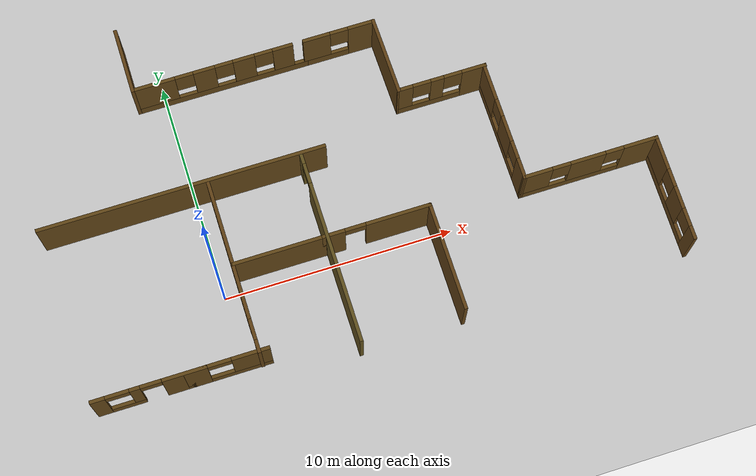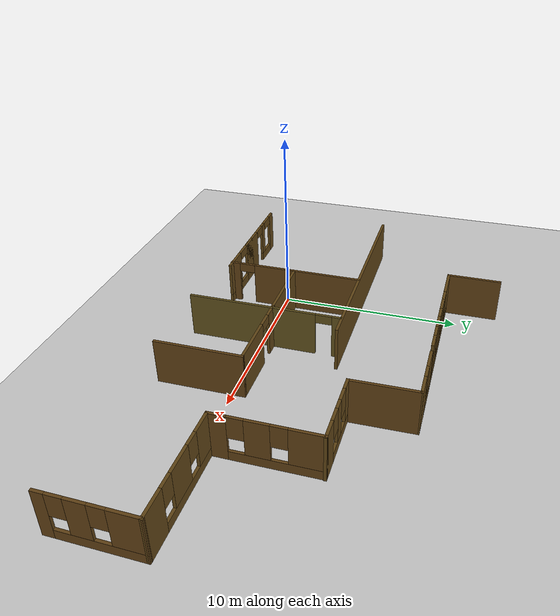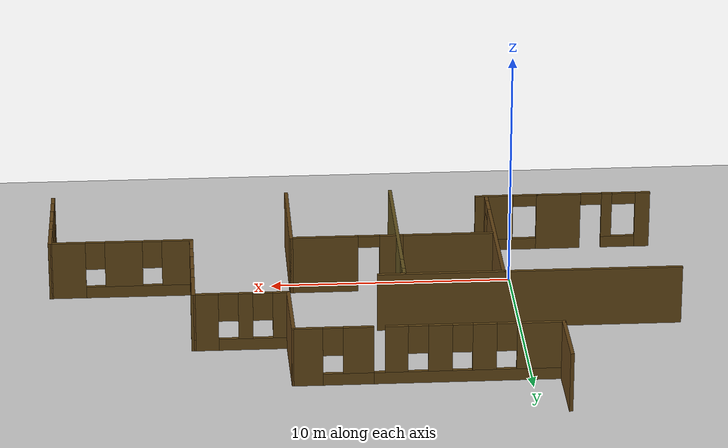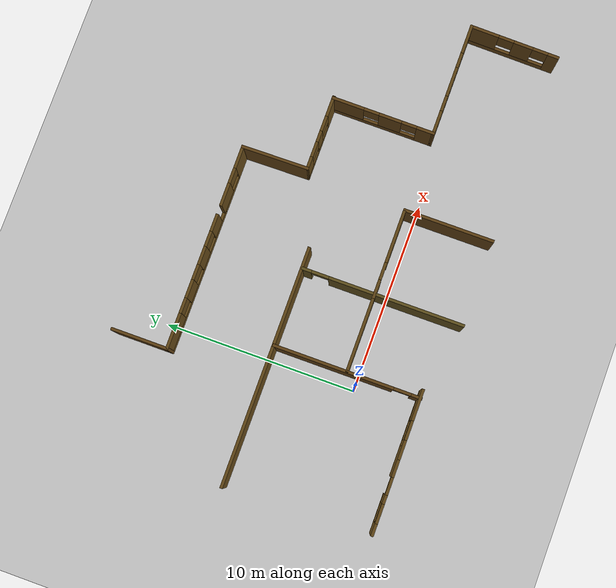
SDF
<sdf version="1.6">
 <world name="default">
  <model name="ground_plane">
   <static>1</static>
   <link name="link">
    <collision name="collision">
     <geometry><plane><normal>0 0 1</normal><size>100 100</size></plane></geometry>
     <surface>
      <contact><collide_bitmask>65535</collide_bitmask></contact>
      <friction><ode><mu>100</mu><mu2>50</mu2></ode></friction>
     </surface>
    </collision>
    <visual name="visual">
     <cast_shadows>0</cast_shadows>
     <geometry><plane><normal>0 0 1</normal><size>100 100</size></plane></geometry>
     <material>
      <script><uri>file://media/materials/scripts/gazebo.material</uri><name>Gazebo/Grey</name></script>
     </material>
    </visual>
   </link>
  </model>
  <model name="BuildMyWorld">
   <pose>-3.99019 0.7838 0 0 -0 0</pose>
   <link name="Wall_54">
    <pose>1.40983 -3.94563 0 0 -0 0</pose>
    <visual name="Wall_54_Visual_0">
     <pose>-3.4333 0 1.25 0 -0 0</pose>
     <geometry><box><size>0.63341 0.15 2.5</size></box></geometry>
     <material>
      <script><uri>file://media/materials/scripts/gazebo.material</uri><name>Gazebo/Grey</name></script>
      <ambient>0.384314 0.27451 0.0862745 1</ambient>
     </material>
     <meta><layer>0</layer></meta>
    </visual>
    <collision name="Wall_54_Collision_0">
     <geometry><box><size>0.63341 0.15 2.5</size></box></geometry>
     <pose>-3.4333 0 1.25 0 -0 0</pose>
    </collision>
    <visual name="Wall_54_Visual_1">
     <pose>0.17724 0 1.25 0 -0 0</pose>
     <geometry><box><size>1.89286 0.15 2.5</size></box></geometry>
     <material>
      <script><uri>file://media/materials/scripts/gazebo.material</uri><name>Gazebo/Grey</name></script>
      <ambient>0.384314 0.27451 0.0862745 1</ambient>
     </material>
     <meta><layer>0</layer></meta>
    </visual>
    <collision name="Wall_54_Collision_1">
     <geometry><box><size>1.89286 0.15 2.5</size></box></geometry>
     <pose>0.17724 0 1.25 0 -0 0</pose>
    </collision>
    <visual name="Wall_54_Visual_2">
     <pose>0.625547 0 1.25 0 -0 0</pose>
     <geometry><box><size>0.99625 0.15 2.5</size></box></geometry>
     <material>
      <script><uri>file://media/materials/scripts/gazebo.material</uri><name>Gazebo/Grey</name></script>
      <ambient>0.384314 0.27451 0.0862745 1</ambient>
     </material>
     <meta><layer>0</layer></meta>
    </visual>
    <collision name="Wall_54_Collision_2">
     <geometry><box><size>0.99625 0.15 2.5</size></box></geometry>
     <pose>0.625547 0 1.25 0 -0 0</pose>
    </collision>
    <visual name="Wall_54_Visual_3">
     <pose>-2.39289 0 0.25 0 -0 0</pose>
     <geometry><box><size>1.4474 0.15 0.5</size></box></geometry>
     <material>
      <script><uri>file://media/materials/scripts/gazebo.material</uri><name>Gazebo/Grey</name></script>
      <ambient>0.384314 0.27451 0.0862745 1</ambient>
     </material>
     <meta><layer>0</layer></meta>
    </visual>
    <collision name="Wall_54_Collision_3">
     <geometry><box><size>1.4474 0.15 0.5</size></box></geometry>
     <pose>-2.39289 0 0.25 0 -0 0</pose>
    </collision>
    <visual name="Wall_54_Visual_4">
     <pose>2.43684 0 0.25 0 -0 0</pose>
     <geometry><box><size>2.62633 0.15 0.5</size></box></geometry>
     <material>
      <script><uri>file://media/materials/scripts/gazebo.material</uri><name>Gazebo/Grey</name></script>
      <ambient>0.384314 0.27451 0.0862745 1</ambient>
     </material>
     <meta><layer>0</layer></meta>
    </visual>
    <collision name="Wall_54_Collision_4">
     <geometry><box><size>2.62633 0.15 0.5</size></box></geometry>
     <pose>2.43684 0 0.25 0 -0 0</pose>
    </collision>
    <visual name="Wall_54_Visual_5">
     <pose>2.43684 0 0.25 0 -0 0</pose>
     <geometry><box><size>2.62633 0.15 0.5</size></box></geometry>
     <material>
      <script><uri>file://media/materials/scripts/gazebo.material</uri><name>Gazebo/Grey</name></script>
      <ambient>0.384314 0.27451 0.0862745 1</ambient>
     </material>
     <meta><layer>0</layer></meta>
    </visual>
    <collision name="Wall_54_Collision_5">
     <geometry><box><size>2.62633 0.15 0.5</size></box></geometry>
     <pose>2.43684 0 0.25 0 -0 0</pose>
    </collision>
    <visual name="Wall_54_Visual_6">
     <pose>-1.89289 0 1.5 0 -0 0</pose>
     <geometry><box><size>0.447398 0.15 2</size></box></geometry>
     <material>
      <script><uri>file://media/materials/scripts/gazebo.material</uri><name>Gazebo/Grey</name></script>
      <ambient>0.384314 0.27451 0.0862745 1</ambient>
     </material>
     <meta><layer>0</layer></meta>
    </visual>
    <collision name="Wall_54_Collision_6">
     <geometry><box><size>0.447398 0.15 2</size></box></geometry>
     <pose>-1.89289 0 1.5 0 -0 0</pose>
    </collision>
    <visual name="Wall_54_Visual_7">
     <pose>-1.89289 0 1.5 0 -0 0</pose>
     <geometry><box><size>0.447398 0.15 2</size></box></geometry>
     <material>
      <script><uri>file://media/materials/scripts/gazebo.material</uri><name>Gazebo/Grey</name></script>
      <ambient>0.384314 0.27451 0.0862745 1</ambient>
     </material>
     <meta><layer>0</layer></meta>
    </visual>
    <collision name="Wall_54_Collision_7">
     <geometry><box><size>0.447398 0.15 2</size></box></geometry>
     <pose>-1.89289 0 1.5 0 -0 0</pose>
    </collision>
    <visual name="Wall_54_Visual_8">
     <pose>2.93684 0 1.5 0 -0 0</pose>
     <geometry><box><size>1.62633 0.15 2</size></box></geometry>
     <material>
      <script><uri>file://media/materials/scripts/gazebo.material</uri><name>Gazebo/Grey</name></script>
      <ambient>0.384314 0.27451 0.0862745 1</ambient>
     </material>
     <meta><layer>0</layer></meta>
    </visual>
    <collision name="Wall_54_Collision_8">
     <geometry><box><size>1.62633 0.15 2</size></box></geometry>
     <pose>2.93684 0 1.5 0 -0 0</pose>
    </collision>
    <visual name="Wall_54_Visual_9">
     <pose>2.93684 0 1.5 0 -0 0</pose>
     <geometry><box><size>1.62633 0.15 2</size></box></geometry>
     <material>
      <script><uri>file://media/materials/scripts/gazebo.material</uri><name>Gazebo/Grey</name></script>
      <ambient>0.384314 0.27451 0.0862745 1</ambient>
     </material>
     <meta><layer>0</layer></meta>
    </visual>
    <collision name="Wall_54_Collision_9">
     <geometry><box><size>1.62633 0.15 2</size></box></geometry>
     <pose>2.93684 0 1.5 0 -0 0</pose>
    </collision>
    <visual name="Wall_54_Visual_10">
     <pose>-2.61659 0 2.25 0 -0 0</pose>
     <geometry><box><size>1 0.15 0.5</size></box></geometry>
     <material>
      <script><uri>file://media/materials/scripts/gazebo.material</uri><name>Gazebo/Grey</name></script>
      <ambient>0.384314 0.27451 0.0862745 1</ambient>
     </material>
     <meta><layer>0</layer></meta>
    </visual>
    <collision name="Wall_54_Collision_10">
     <geometry><box><size>1 0.15 0.5</size></box></geometry>
     <pose>-2.61659 0 2.25 0 -0 0</pose>
    </collision>
    <visual name="Wall_54_Visual_11">
     <pose>1.62367 0 2.25 0 -0 0</pose>
     <geometry><box><size>1 0.15 0.5</size></box></geometry>
     <material>
      <script><uri>file://media/materials/scripts/gazebo.material</uri><name>Gazebo/Grey</name></script>
      <ambient>0.384314 0.27451 0.0862745 1</ambient>
     </material>
     <meta><layer>0</layer></meta>
    </visual>
    <collision name="Wall_54_Collision_11">
     <geometry><box><size>1 0.15 0.5</size></box></geometry>
     <pose>1.62367 0 2.25 0 -0 0</pose>
    </collision>
    <visual name="Wall_54_Visual_12">
     <pose>1.62367 0 2.25 0 -0 0</pose>
     <geometry><box><size>1 0.15 0.5</size></box></geometry>
     <material>
      <script><uri>file://media/materials/scripts/gazebo.material</uri><name>Gazebo/Grey</name></script>
      <ambient>0.384314 0.27451 0.0862745 1</ambient>
     </material>
     <meta><layer>0</layer></meta>
    </visual>
    <collision name="Wall_54_Collision_12">
     <geometry><box><size>1 0.15 0.5</size></box></geometry>
     <pose>1.62367 0 2.25 0 -0 0</pose>
    </collision>
    <visual name="Wall_54_Visual_13">
     <pose>-1.22088 0 2.25 0 -0 0</pose>
     <geometry><box><size>0.896613 0.15 0.5</size></box></geometry>
     <material>
      <script><uri>file://media/materials/scripts/gazebo.material</uri><name>Gazebo/Grey</name></script>
      <ambient>0.384314 0.27451 0.0862745 1</ambient>
     </material>
     <meta><layer>0</layer></meta>
    </visual>
    <collision name="Wall_54_Collision_13">
     <geometry><box><size>0.896613 0.15 0.5</size></box></geometry>
     <pose>-1.22088 0 2.25 0 -0 0</pose>
    </collision>
    <visual name="Wall_54_Visual_14">
     <pose>-1.22088 0 2.25 0 -0 0</pose>
     <geometry><box><size>0.896613 0.15 0.5</size></box></geometry>
     <material>
      <script><uri>file://media/materials/scripts/gazebo.material</uri><name>Gazebo/Grey</name></script>
      <ambient>0.384314 0.27451 0.0862745 1</ambient>
     </material>
     <meta><layer>0</layer></meta>
    </visual>
    <collision name="Wall_54_Collision_14">
     <geometry><box><size>0.896613 0.15 0.5</size></box></geometry>
     <pose>-1.22088 0 2.25 0 -0 0</pose>
    </collision>
   </link>
   <link name="Wall_59">
    <pose>23.1398 -2.49563 0 0 -0 1.55559</pose>
    <visual name="Wall_59_Visual_0">
     <pose>-2.07621 0 1.25 0 -0 0</pose>
     <geometry><box><size>0.597589 0.15 2.5</size></box></geometry>
     <material>
      <script><uri>file://media/materials/scripts/gazebo.material</uri><name>Gazebo/Grey</name></script>
      <ambient>0.384314 0.258824 0.0823529 1</ambient>
     </material>
     <meta><layer>0</layer></meta>
    </visual>
    <collision name="Wall_59_Collision_0">
     <geometry><box><size>0.597589 0.15 2.5</size></box></geometry>
     <pose>-2.07621 0 1.25 0 -0 0</pose>
    </collision>
    <visual name="Wall_59_Visual_1">
     <pose>0.298794 0 0.25 0 -0 0</pose>
     <geometry><box><size>4.15241 0.15 0.5</size></box></geometry>
     <material>
      <script><uri>file://media/materials/scripts/gazebo.material</uri><name>Gazebo/Grey</name></script>
      <ambient>0.384314 0.258824 0.0823529 1</ambient>
     </material>
     <meta><layer>0</layer></meta>
    </visual>
    <collision name="Wall_59_Collision_1">
     <geometry><box><size>4.15241 0.15 0.5</size></box></geometry>
     <pose>0.298794 0 0.25 0 -0 0</pose>
    </collision>
    <visual name="Wall_59_Visual_2">
     <pose>-0.474898 0 1.5 0 -0 0</pose>
     <geometry><box><size>1.00503 0.15 2</size></box></geometry>
     <material>
      <script><uri>file://media/materials/scripts/gazebo.material</uri><name>Gazebo/Grey</name></script>
      <ambient>0.384314 0.258824 0.0823529 1</ambient>
     </material>
     <meta><layer>0</layer></meta>
    </visual>
    <collision name="Wall_59_Collision_2">
     <geometry><box><size>1.00503 0.15 2</size></box></geometry>
     <pose>-0.474898 0 1.5 0 -0 0</pose>
    </collision>
    <visual name="Wall_59_Visual_3">
     <pose>1.60131 0 1.5 0 -0 0</pose>
     <geometry><box><size>1.54739 0.15 2</size></box></geometry>
     <material>
      <script><uri>file://media/materials/scripts/gazebo.material</uri><name>Gazebo/Grey</name></script>
      <ambient>0.384314 0.258824 0.0823529 1</ambient>
     </material>
     <meta><layer>0</layer></meta>
    </visual>
    <collision name="Wall_59_Collision_3">
     <geometry><box><size>1.54739 0.15 2</size></box></geometry>
     <pose>1.60131 0 1.5 0 -0 0</pose>
    </collision>
    <visual name="Wall_59_Visual_4">
     <pose>-1.37741 0 1.9 0 -0 0</pose>
     <geometry><box><size>0.8 0.15 1.2</size></box></geometry>
     <material>
      <script><uri>file://media/materials/scripts/gazebo.material</uri><name>Gazebo/Grey</name></script>
      <ambient>0.384314 0.258824 0.0823529 1</ambient>
     </material>
     <meta><layer>0</layer></meta>
    </visual>
    <collision name="Wall_59_Collision_4">
     <geometry><box><size>0.8 0.15 1.2</size></box></geometry>
     <pose>-1.37741 0 1.9 0 -0 0</pose>
    </collision>
    <visual name="Wall_59_Visual_5">
     <pose>0.427615 0 1.9 0 -0 0</pose>
     <geometry><box><size>0.8 0.15 1.2</size></box></geometry>
     <material>
      <script><uri>file://media/materials/scripts/gazebo.material</uri><name>Gazebo/Grey</name></script>
      <ambient>0.384314 0.258824 0.0823529 1</ambient>
     </material>
     <meta><layer>0</layer></meta>
    </visual>
    <collision name="Wall_59_Collision_5">
     <geometry><box><size>0.8 0.15 1.2</size></box></geometry>
     <pose>0.427615 0 1.9 0 -0 0</pose>
    </collision>
   </link>
   <link name="Wall_60">
    <pose>20.2498 -0.195633 0 0 -0 3.14159</pose>
    <visual name="Wall_60_Visual_0">
     <pose>-2.23109 0 1.25 0 -0 0</pose>
     <geometry><box><size>1.53781 0.15 2.5</size></box></geometry>
     <material>
      <script><uri>file://media/materials/scripts/gazebo.material</uri><name>Gazebo/Grey</name></script>
      <ambient>0.384314 0.27451 0.0862745 1</ambient>
     </material>
     <meta><layer>0</layer></meta>
    </visual>
    <collision name="Wall_60_Collision_0">
     <geometry><box><size>1.53781 0.15 2.5</size></box></geometry>
     <pose>-2.23109 0 1.25 0 -0 0</pose>
    </collision>
    <visual name="Wall_60_Visual_1">
     <pose>0.768905 0 0.25 0 -0 0</pose>
     <geometry><box><size>4.46219 0.15 0.5</size></box></geometry>
     <material>
      <script><uri>file://media/materials/scripts/gazebo.material</uri><name>Gazebo/Grey</name></script>
      <ambient>0.384314 0.27451 0.0862745 1</ambient>
     </material>
     <meta><layer>0</layer></meta>
    </visual>
    <collision name="Wall_60_Collision_1">
     <geometry><box><size>4.46219 0.15 0.5</size></box></geometry>
     <pose>0.768905 0 0.25 0 -0 0</pose>
    </collision>
    <visual name="Wall_60_Visual_2">
     <pose>0.117472 0 1.5 0 -0 0</pose>
     <geometry><box><size>1.55932 0.15 2</size></box></geometry>
     <material>
      <script><uri>file://media/materials/scripts/gazebo.material</uri><name>Gazebo/Grey</name></script>
      <ambient>0.384314 0.27451 0.0862745 1</ambient>
     </material>
     <meta><layer>0</layer></meta>
    </visual>
    <collision name="Wall_60_Collision_2">
     <geometry><box><size>1.55932 0.15 2</size></box></geometry>
     <pose>0.117472 0 1.5 0 -0 0</pose>
    </collision>
    <visual name="Wall_60_Visual_3">
     <pose>2.34857 0 1.5 0 -0 0</pose>
     <geometry><box><size>1.30287 0.15 2</size></box></geometry>
     <material>
      <script><uri>file://media/materials/scripts/gazebo.material</uri><name>Gazebo/Grey</name></script>
      <ambient>0.384314 0.27451 0.0862745 1</ambient>
     </material>
     <meta><layer>0</layer></meta>
    </visual>
    <collision name="Wall_60_Collision_3">
     <geometry><box><size>1.30287 0.15 2</size></box></geometry>
     <pose>2.34857 0 1.5 0 -0 0</pose>
    </collision>
    <visual name="Wall_60_Visual_4">
     <pose>-1.06219 0 1.9 0 -0 0</pose>
     <geometry><box><size>0.8 0.15 1.2</size></box></geometry>
     <material>
      <script><uri>file://media/materials/scripts/gazebo.material</uri><name>Gazebo/Grey</name></script>
      <ambient>0.384314 0.27451 0.0862745 1</ambient>
     </material>
     <meta><layer>0</layer></meta>
    </visual>
    <collision name="Wall_60_Collision_4">
     <geometry><box><size>0.8 0.15 1.2</size></box></geometry>
     <pose>-1.06219 0 1.9 0 -0 0</pose>
    </collision>
    <visual name="Wall_60_Visual_5">
     <pose>1.29713 0 1.9 0 -0 0</pose>
     <geometry><box><size>0.8 0.15 1.2</size></box></geometry>
     <material>
      <script><uri>file://media/materials/scripts/gazebo.material</uri><name>Gazebo/Grey</name></script>
      <ambient>0.384314 0.27451 0.0862745 1</ambient>
     </material>
     <meta><layer>0</layer></meta>
    </visual>
    <collision name="Wall_60_Collision_5">
     <geometry><box><size>0.8 0.15 1.2</size></box></geometry>
     <pose>1.29713 0 1.9 0 -0 0</pose>
    </collision>
   </link>
   <link name="Wall_61">
    <pose>17.334 2.45647 0 0 -0 1.56732</pose>
    <visual name="Wall_61_Visual_0">
     <pose>-2.25334 0 1.25 0 -0 0</pose>
     <geometry><box><size>0.94756 0.15 2.5</size></box></geometry>
     <material>
      <script><uri>file://media/materials/scripts/gazebo.material</uri><name>Gazebo/Grey</name></script>
      <ambient>0.384314 0.258824 0.0823529 1</ambient>
     </material>
     <meta><layer>0</layer></meta>
    </visual>
    <collision name="Wall_61_Collision_0">
     <geometry><box><size>0.94756 0.15 2.5</size></box></geometry>
     <pose>-2.25334 0 1.25 0 -0 0</pose>
    </collision>
    <visual name="Wall_61_Visual_1">
     <pose>0.47378 0 0.25 0 -0 0</pose>
     <geometry><box><size>4.50669 0.15 0.5</size></box></geometry>
     <material>
      <script><uri>file://media/materials/scripts/gazebo.material</uri><name>Gazebo/Grey</name></script>
      <ambient>0.384314 0.258824 0.0823529 1</ambient>
     </material>
     <meta><layer>0</layer></meta>
    </visual>
    <collision name="Wall_61_Collision_1">
     <geometry><box><size>4.50669 0.15 0.5</size></box></geometry>
     <pose>0.47378 0 0.25 0 -0 0</pose>
    </collision>
    <visual name="Wall_61_Visual_2">
     <pose>-0.385033 0 1.5 0 -0 0</pose>
     <geometry><box><size>1.18906 0.15 2</size></box></geometry>
     <material>
      <script><uri>file://media/materials/scripts/gazebo.material</uri><name>Gazebo/Grey</name></script>
      <ambient>0.384314 0.258824 0.0823529 1</ambient>
     </material>
     <meta><layer>0</layer></meta>
    </visual>
    <collision name="Wall_61_Collision_2">
     <geometry><box><size>1.18906 0.15 2</size></box></geometry>
     <pose>-0.385033 0 1.5 0 -0 0</pose>
    </collision>
    <visual name="Wall_61_Visual_3">
     <pose>1.86831 0 1.5 0 -0 0</pose>
     <geometry><box><size>1.71763 0.15 2</size></box></geometry>
     <material>
      <script><uri>file://media/materials/scripts/gazebo.material</uri><name>Gazebo/Grey</name></script>
      <ambient>0.384314 0.258824 0.0823529 1</ambient>
     </material>
     <meta><layer>0</layer></meta>
    </visual>
    <collision name="Wall_61_Collision_3">
     <geometry><box><size>1.71763 0.15 2</size></box></geometry>
     <pose>1.86831 0 1.5 0 -0 0</pose>
    </collision>
    <visual name="Wall_61_Visual_4">
     <pose>-1.37956 0 1.9 0 -0 0</pose>
     <geometry><box><size>0.8 0.15 1.2</size></box></geometry>
     <material>
      <script><uri>file://media/materials/scripts/gazebo.material</uri><name>Gazebo/Grey</name></script>
      <ambient>0.384314 0.258824 0.0823529 1</ambient>
     </material>
     <meta><layer>0</layer></meta>
    </visual>
    <collision name="Wall_61_Collision_4">
     <geometry><box><size>0.8 0.15 1.2</size></box></geometry>
     <pose>-1.37956 0 1.9 0 -0 0</pose>
    </collision>
    <visual name="Wall_61_Visual_5">
     <pose>0.609496 0 1.9 0 -0 0</pose>
     <geometry><box><size>0.8 0.15 1.2</size></box></geometry>
     <material>
      <script><uri>file://media/materials/scripts/gazebo.material</uri><name>Gazebo/Grey</name></script>
      <ambient>0.384314 0.258824 0.0823529 1</ambient>
     </material>
     <meta><layer>0</layer></meta>
    </visual>
    <collision name="Wall_61_Collision_5">
     <geometry><box><size>0.8 0.15 1.2</size></box></geometry>
     <pose>0.609496 0 1.9 0 -0 0</pose>
    </collision>
   </link>
   <link name="Wall_62">
    <pose>15.4532 5.10858 0 0 -0 3.14159</pose>
    <visual name="Wall_62_Visual_0">
     <pose>-1.44622 0 1.25 0 -0 0</pose>
     <geometry><box><size>1.10755 0.15 2.5</size></box></geometry>
     <material>
      <script><uri>file://media/materials/scripts/gazebo.material</uri><name>Gazebo/Grey</name></script>
      <ambient>0.384314 0.27451 0.0862745 1</ambient>
     </material>
     <meta><layer>0</layer></meta>
    </visual>
    <collision name="Wall_62_Collision_0">
     <geometry><box><size>1.10755 0.15 2.5</size></box></geometry>
     <pose>-1.44622 0 1.25 0 -0 0</pose>
    </collision>
    <visual name="Wall_62_Visual_1">
     <pose>0.553776 0 0.25 0 -0 0</pose>
     <geometry><box><size>2.89245 0.15 0.5</size></box></geometry>
     <material>
      <script><uri>file://media/materials/scripts/gazebo.material</uri><name>Gazebo/Grey</name></script>
      <ambient>0.384314 0.27451 0.0862745 1</ambient>
     </material>
     <meta><layer>0</layer></meta>
    </visual>
    <collision name="Wall_62_Collision_1">
     <geometry><box><size>2.89245 0.15 0.5</size></box></geometry>
     <pose>0.553776 0 0.25 0 -0 0</pose>
    </collision>
    <visual name="Wall_62_Visual_2">
     <pose>0.201469 0 1.5 0 -0 0</pose>
     <geometry><box><size>0.587836 0.15 2</size></box></geometry>
     <material>
      <script><uri>file://media/materials/scripts/gazebo.material</uri><name>Gazebo/Grey</name></script>
      <ambient>0.384314 0.27451 0.0862745 1</ambient>
     </material>
     <meta><layer>0</layer></meta>
    </visual>
    <collision name="Wall_62_Collision_2">
     <geometry><box><size>0.587836 0.15 2</size></box></geometry>
     <pose>0.201469 0 1.5 0 -0 0</pose>
    </collision>
    <visual name="Wall_62_Visual_3">
     <pose>1.64769 0 1.5 0 -0 0</pose>
     <geometry><box><size>0.704612 0.15 2</size></box></geometry>
     <material>
      <script><uri>file://media/materials/scripts/gazebo.material</uri><name>Gazebo/Grey</name></script>
      <ambient>0.384314 0.27451 0.0862745 1</ambient>
     </material>
     <meta><layer>0</layer></meta>
    </visual>
    <collision name="Wall_62_Collision_3">
     <geometry><box><size>0.704612 0.15 2</size></box></geometry>
     <pose>1.64769 0 1.5 0 -0 0</pose>
    </collision>
    <visual name="Wall_62_Visual_4">
     <pose>-0.492449 0 1.9 0 -0 0</pose>
     <geometry><box><size>0.8 0.15 1.2</size></box></geometry>
     <material>
      <script><uri>file://media/materials/scripts/gazebo.material</uri><name>Gazebo/Grey</name></script>
      <ambient>0.384314 0.27451 0.0862745 1</ambient>
     </material>
     <meta><layer>0</layer></meta>
    </visual>
    <collision name="Wall_62_Collision_4">
     <geometry><box><size>0.8 0.15 1.2</size></box></geometry>
     <pose>-0.492449 0 1.9 0 -0 0</pose>
    </collision>
    <visual name="Wall_62_Visual_5">
     <pose>0.895388 0 1.9 0 -0 0</pose>
     <geometry><box><size>0.8 0.15 1.2</size></box></geometry>
     <material>
      <script><uri>file://media/materials/scripts/gazebo.material</uri><name>Gazebo/Grey</name></script>
      <ambient>0.384314 0.27451 0.0862745 1</ambient>
     </material>
     <meta><layer>0</layer></meta>
    </visual>
    <collision name="Wall_62_Collision_5">
     <geometry><box><size>0.8 0.15 1.2</size></box></geometry>
     <pose>0.895388 0 1.9 0 -0 0</pose>
    </collision>
   </link>
   <link name="Wall_63">
    <collision name="Wall_63_Collision">
     <geometry><box><size>3.54621 0.15 2.5</size></box></geometry>
     <pose>0 0 1.25 0 -0 0</pose>
    </collision>
    <visual name="Wall_63_Visual">
     <pose>0 0 1.25 0 -0 0</pose>
     <geometry><box><size>3.54621 0.15 2.5</size></box></geometry>
     <material>
      <script><uri>file://media/materials/scripts/gazebo.material</uri><name>Gazebo/Grey</name></script>
      <ambient>0.384314 0.258824 0.0823529 1</ambient>
     </material>
     <meta><layer>0</layer></meta>
    </visual>
    <pose>13.5015 6.80647 0 0 -0 1.58653</pose>
   </link>
   <link name="Wall_64">
    <pose>11.9247 8.50437 0 0 -0 3.14159</pose>
    <visual name="Wall_64_Visual_0">
     <pose>-1.01058 0 1.25 0 -0 0</pose>
     <geometry><box><size>1.22884 0.15 2.5</size></box></geometry>
     <material>
      <script><uri>file://media/materials/scripts/gazebo.material</uri><name>Gazebo/Grey</name></script>
      <ambient>0.384314 0.27451 0.0862745 1</ambient>
     </material>
     <meta><layer>0</layer></meta>
    </visual>
    <collision name="Wall_64_Collision_0">
     <geometry><box><size>1.22884 0.15 2.5</size></box></geometry>
     <pose>-1.01058 0 1.25 0 -0 0</pose>
    </collision>
    <visual name="Wall_64_Visual_1">
     <pose>0.614419 0 0.25 0 -0 0</pose>
     <geometry><box><size>2.02116 0.15 0.5</size></box></geometry>
     <material>
      <script><uri>file://media/materials/scripts/gazebo.material</uri><name>Gazebo/Grey</name></script>
      <ambient>0.384314 0.27451 0.0862745 1</ambient>
     </material>
     <meta><layer>0</layer></meta>
    </visual>
    <collision name="Wall_64_Collision_1">
     <geometry><box><size>2.02116 0.15 0.5</size></box></geometry>
     <pose>0.614419 0 0.25 0 -0 0</pose>
    </collision>
    <visual name="Wall_64_Visual_2">
     <pose>1.01442 0 1.5 0 -0 0</pose>
     <geometry><box><size>1.22116 0.15 2</size></box></geometry>
     <material>
      <script><uri>file://media/materials/scripts/gazebo.material</uri><name>Gazebo/Grey</name></script>
      <ambient>0.384314 0.27451 0.0862745 1</ambient>
     </material>
     <meta><layer>0</layer></meta>
    </visual>
    <collision name="Wall_64_Collision_2">
     <geometry><box><size>1.22116 0.15 2</size></box></geometry>
     <pose>1.01442 0 1.5 0 -0 0</pose>
    </collision>
    <visual name="Wall_64_Visual_3">
     <pose>0.003837 0 1.9 0 -0 0</pose>
     <geometry><box><size>0.8 0.15 1.2</size></box></geometry>
     <material>
      <script><uri>file://media/materials/scripts/gazebo.material</uri><name>Gazebo/Grey</name></script>
      <ambient>0.384314 0.27451 0.0862745 1</ambient>
     </material>
     <meta><layer>0</layer></meta>
    </visual>
    <collision name="Wall_64_Collision_3">
     <geometry><box><size>0.8 0.15 1.2</size></box></geometry>
     <pose>0.003837 0 1.9 0 -0 0</pose>
    </collision>
   </link>
   <link name="Wall_65">
    <pose>6.57475 8.50437 0 0 -0 3.14159</pose>
    <visual name="Wall_65_Visual_0">
     <pose>0 0 0.25 0 -0 0</pose>
     <geometry><box><size>7.75 0.15 0.5</size></box></geometry>
     <material>
      <script><uri>file://media/materials/scripts/gazebo.material</uri><name>Gazebo/Grey</name></script>
      <ambient>0.384314 0.27451 0.0862745 1</ambient>
     </material>
     <meta><layer>0</layer></meta>
    </visual>
    <collision name="Wall_65_Collision_0">
     <geometry><box><size>7.75 0.15 0.5</size></box></geometry>
     <pose>0 0 0.25 0 -0 0</pose>
    </collision>
    <visual name="Wall_65_Visual_1">
     <pose>-2.82493 0 1.5 0 -0 0</pose>
     <geometry><box><size>0.911665 0.15 2</size></box></geometry>
     <material>
      <script><uri>file://media/materials/scripts/gazebo.material</uri><name>Gazebo/Grey</name></script>
      <ambient>0.384314 0.27451 0.0862745 1</ambient>
     </material>
     <meta><layer>0</layer></meta>
    </visual>
    <collision name="Wall_65_Collision_1">
     <geometry><box><size>0.911665 0.15 2</size></box></geometry>
     <pose>-2.82493 0 1.5 0 -0 0</pose>
    </collision>
    <visual name="Wall_65_Visual_2">
     <pose>-1.09013 0 1.5 0 -0 0</pose>
     <geometry><box><size>0.957926 0.15 2</size></box></geometry>
     <material>
      <script><uri>file://media/materials/scripts/gazebo.material</uri><name>Gazebo/Grey</name></script>
      <ambient>0.384314 0.27451 0.0862745 1</ambient>
     </material>
     <meta><layer>0</layer></meta>
    </visual>
    <collision name="Wall_65_Collision_2">
     <geometry><box><size>0.957926 0.15 2</size></box></geometry>
     <pose>-1.09013 0 1.5 0 -0 0</pose>
    </collision>
    <visual name="Wall_65_Visual_3">
     <pose>0.667795 0 1.5 0 -0 0</pose>
     <geometry><box><size>0.957926 0.15 2</size></box></geometry>
     <material>
      <script><uri>file://media/materials/scripts/gazebo.material</uri><name>Gazebo/Grey</name></script>
      <ambient>0.384314 0.27451 0.0862745 1</ambient>
     </material>
     <meta><layer>0</layer></meta>
    </visual>
    <collision name="Wall_65_Collision_3">
     <geometry><box><size>0.957926 0.15 2</size></box></geometry>
     <pose>0.667795 0 1.5 0 -0 0</pose>
    </collision>
    <visual name="Wall_65_Visual_4">
     <pose>2.91088 0 1.5 0 -0 0</pose>
     <geometry><box><size>1.92824 0.15 2</size></box></geometry>
     <material>
      <script><uri>file://media/materials/scripts/gazebo.material</uri><name>Gazebo/Grey</name></script>
      <ambient>0.384314 0.27451 0.0862745 1</ambient>
     </material>
     <meta><layer>0</layer></meta>
    </visual>
    <collision name="Wall_65_Collision_4">
     <geometry><box><size>1.92824 0.15 2</size></box></geometry>
     <pose>2.91088 0 1.5 0 -0 0</pose>
    </collision>
    <visual name="Wall_65_Visual_5">
     <pose>-1.96909 0 1.9 0 -0 0</pose>
     <geometry><box><size>0.8 0.15 1.2</size></box></geometry>
     <material>
      <script><uri>file://media/materials/scripts/gazebo.material</uri><name>Gazebo/Grey</name></script>
      <ambient>0.384314 0.27451 0.0862745 1</ambient>
     </material>
     <meta><layer>0</layer></meta>
    </visual>
    <collision name="Wall_65_Collision_5">
     <geometry><box><size>0.8 0.15 1.2</size></box></geometry>
     <pose>-1.96909 0 1.9 0 -0 0</pose>
    </collision>
    <visual name="Wall_65_Visual_6">
     <pose>-0.211168 0 1.9 0 -0 0</pose>
     <geometry><box><size>0.8 0.15 1.2</size></box></geometry>
     <material>
      <script><uri>file://media/materials/scripts/gazebo.material</uri><name>Gazebo/Grey</name></script>
      <ambient>0.384314 0.27451 0.0862745 1</ambient>
     </material>
     <meta><layer>0</layer></meta>
    </visual>
    <collision name="Wall_65_Collision_6">
     <geometry><box><size>0.8 0.15 1.2</size></box></geometry>
     <pose>-0.211168 0 1.9 0 -0 0</pose>
    </collision>
    <visual name="Wall_65_Visual_7">
     <pose>1.54676 0 1.9 0 -0 0</pose>
     <geometry><box><size>0.8 0.15 1.2</size></box></geometry>
     <material>
      <script><uri>file://media/materials/scripts/gazebo.material</uri><name>Gazebo/Grey</name></script>
      <ambient>0.384314 0.27451 0.0862745 1</ambient>
     </material>
     <meta><layer>0</layer></meta>
    </visual>
    <collision name="Wall_65_Collision_7">
     <geometry><box><size>0.8 0.15 1.2</size></box></geometry>
     <pose>1.54676 0 1.9 0 -0 0</pose>
    </collision>
   </link>
   <link name="Wall_66">
    <collision name="Wall_66_Collision">
     <geometry><box><size>3 0.15 2.5</size></box></geometry>
     <pose>0 0 1.25 0 -0 0</pose>
    </collision>
    <visual name="Wall_66_Visual">
     <pose>0 0 1.25 0 -0 0</pose>
     <geometry><box><size>3 0.15 2.5</size></box></geometry>
     <material>
      <script><uri>file://media/materials/scripts/gazebo.material</uri><name>Gazebo/Grey</name></script>
      <ambient>0.384314 0.258824 0.0823529 1</ambient>
     </material>
     <meta><layer>0</layer></meta>
    </visual>
    <pose>2.77475 9.92937 0 0 -0 1.5708</pose>
   </link>
   <link name="Wall_83">
    <collision name="Wall_83_Collision">
     <geometry><box><size>12.5 0.15 2.5</size></box></geometry>
     <pose>0 0 1.25 0 -0 0</pose>
    </collision>
    <visual name="Wall_83_Visual">
     <pose>0 0 1.25 0 -0 0</pose>
     <geometry><box><size>12.5 0.15 2.5</size></box></geometry>
     <material>
      <script><uri>file://media/materials/scripts/gazebo.material</uri><name>Gazebo/Grey</name></script>
      <ambient>0.384314 0.27451 0.0862745 1</ambient>
     </material>
     <meta><layer>0</layer></meta>
    </visual>
    <pose>3.59865 3.66204 0 0 -0 0</pose>
   </link>
   <link name="Wall_85">
    <pose>4.6936 -0.171061 0 0 -0 1.5708</pose>
    <visual name="Wall_85_Visual_0">
     <pose>-3.58897 0 1.25 0 -0 0</pose>
     <geometry><box><size>0.57206 0.15 2.5</size></box></geometry>
     <material>
      <script><uri>file://media/materials/scripts/gazebo.material</uri><name>Gazebo/Grey</name></script>
      <ambient>0.384314 0.258824 0.0823529 1</ambient>
     </material>
     <meta><layer>0</layer></meta>
    </visual>
    <collision name="Wall_85_Collision_0">
     <geometry><box><size>0.57206 0.15 2.5</size></box></geometry>
     <pose>-3.58897 0 1.25 0 -0 0</pose>
    </collision>
    <visual name="Wall_85_Visual_1">
     <pose>0.73603 0 1.25 0 -0 0</pose>
     <geometry><box><size>6.27794 0.15 2.5</size></box></geometry>
     <material>
      <script><uri>file://media/materials/scripts/gazebo.material</uri><name>Gazebo/Grey</name></script>
      <ambient>0.384314 0.258824 0.0823529 1</ambient>
     </material>
     <meta><layer>0</layer></meta>
    </visual>
    <collision name="Wall_85_Collision_1">
     <geometry><box><size>6.27794 0.15 2.5</size></box></geometry>
     <pose>0.73603 0 1.25 0 -0 0</pose>
    </collision>
    <visual name="Wall_85_Visual_2">
     <pose>-2.85294 0 2.25 0 -0 0</pose>
     <geometry><box><size>0.9 0.15 0.5</size></box></geometry>
     <material>
      <script><uri>file://media/materials/scripts/gazebo.material</uri><name>Gazebo/Grey</name></script>
      <ambient>0.384314 0.258824 0.0823529 1</ambient>
     </material>
     <meta><layer>0</layer></meta>
    </visual>
    <collision name="Wall_85_Collision_2">
     <geometry><box><size>0.9 0.15 0.5</size></box></geometry>
     <pose>-2.85294 0 2.25 0 -0 0</pose>
    </collision>
   </link>
   <link name="Wall_90">
    <collision name="Wall_90_Collision">
     <geometry><box><size>4 0.15 2.5</size></box></geometry>
     <pose>0 0 1.25 0 -0 0</pose>
    </collision>
    <visual name="Wall_90_Visual">
     <pose>0 0 1.25 0 -0 0</pose>
     <geometry><box><size>4 0.15 2.5</size></box></geometry>
     <material>
      <script><uri>file://media/materials/scripts/gazebo.material</uri><name>Gazebo/Grey</name></script>
      <ambient>0.384314 0.27451 0.0862745 1</ambient>
     </material>
     <meta><layer>0</layer></meta>
    </visual>
    <pose>6.65746 -0.15118 0 0 -0 0</pose>
   </link>
   <link name="Wall_92">
    <pose>10.8825 -0.15118 0 0 -0 0</pose>
    <visual name="Wall_92_Visual_0">
     <pose>-1.88068 0 1.25 0 -0 0</pose>
     <geometry><box><size>0.988639 0.15 2.5</size></box></geometry>
     <material>
      <script><uri>file://media/materials/scripts/gazebo.material</uri><name>Gazebo/Grey</name></script>
      <ambient>0.384314 0.27451 0.0862745 1</ambient>
     </material>
     <meta><layer>0</layer></meta>
    </visual>
    <collision name="Wall_92_Collision_0">
     <geometry><box><size>0.988639 0.15 2.5</size></box></geometry>
     <pose>-1.88068 0 1.25 0 -0 0</pose>
    </collision>
    <visual name="Wall_92_Visual_1">
     <pose>0.94432 0 1.25 0 -0 0</pose>
     <geometry><box><size>2.86136 0.15 2.5</size></box></geometry>
     <material>
      <script><uri>file://media/materials/scripts/gazebo.material</uri><name>Gazebo/Grey</name></script>
      <ambient>0.384314 0.27451 0.0862745 1</ambient>
     </material>
     <meta><layer>0</layer></meta>
    </visual>
    <collision name="Wall_92_Collision_1">
     <geometry><box><size>2.86136 0.15 2.5</size></box></geometry>
     <pose>0.94432 0 1.25 0 -0 0</pose>
    </collision>
    <visual name="Wall_92_Visual_2">
     <pose>-0.936361 0 2.25 0 -0 0</pose>
     <geometry><box><size>0.9 0.15 0.5</size></box></geometry>
     <material>
      <script><uri>file://media/materials/scripts/gazebo.material</uri><name>Gazebo/Grey</name></script>
      <ambient>0.384314 0.27451 0.0862745 1</ambient>
     </material>
     <meta><layer>0</layer></meta>
    </visual>
    <collision name="Wall_92_Collision_2">
     <geometry><box><size>0.9 0.15 0.5</size></box></geometry>
     <pose>-0.936361 0 2.25 0 -0 0</pose>
    </collision>
   </link>
   <link name="Wall_93">
    <collision name="Wall_93_Collision">
     <geometry><box><size>4.75 0.15 2.5</size></box></geometry>
     <pose>0 0 1.25 0 -0 0</pose>
    </collision>
    <visual name="Wall_93_Visual">
     <pose>0 0 1.25 0 -0 0</pose>
     <geometry><box><size>4.75 0.15 2.5</size></box></geometry>
     <material>
      <script><uri>file://media/materials/scripts/gazebo.material</uri><name>Gazebo/Grey</name></script>
      <ambient>0.384314 0.258824 0.0823529 1</ambient>
     </material>
     <meta><layer>0</layer></meta>
    </visual>
    <pose>13.1825 -2.45118 0 0 0 -1.5708</pose>
   </link>
   <static>1</static>
  </model>
  <model name="AdditionalWall">
   <pose>4.74847 0.205813 0 0 -0 0</pose>
   <link name="Wall_115">
    <pose>0 0 0 0 0 -1.5708</pose>
    <visual name="Wall_115_Visual_0">
     <pose>-3.98651 0 1.25 0 -0 0</pose>
     <geometry><box><size>0.526987 0.15 2.5</size></box></geometry>
     <material>
      <script><uri>file://media/materials/scripts/gazebo.material</uri><name>Gazebo/Grey</name></script>
      <ambient>0.384314 0.317647 0.113725 1</ambient>
     </material>
     <meta><layer>0</layer></meta>
    </visual>
    <collision name="Wall_115_Collision_0">
     <geometry><box><size>0.526987 0.15 2.5</size></box></geometry>
     <pose>-3.98651 0 1.25 0 -0 0</pose>
    </collision>
    <visual name="Wall_115_Visual_1">
     <pose>0.713493 0 1.25 0 -0 0</pose>
     <geometry><box><size>7.07301 0.15 2.5</size></box></geometry>
     <material>
      <script><uri>file://media/materials/scripts/gazebo.material</uri><name>Gazebo/Grey</name></script>
      <ambient>0.384314 0.317647 0.113725 1</ambient>
     </material>
     <meta><layer>0</layer></meta>
    </visual>
    <collision name="Wall_115_Collision_1">
     <geometry><box><size>7.07301 0.15 2.5</size></box></geometry>
     <pose>0.713493 0 1.25 0 -0 0</pose>
    </collision>
    <visual name="Wall_115_Visual_2">
     <pose>-3.27301 0 2.25 0 -0 0</pose>
     <geometry><box><size>0.9 0.15 0.5</size></box></geometry>
     <material>
      <script><uri>file://media/materials/scripts/gazebo.material</uri><name>Gazebo/Grey</name></script>
      <ambient>0.384314 0.317647 0.113725 1</ambient>
     </material>
     <meta><layer>0</layer></meta>
    </visual>
    <collision name="Wall_115_Collision_2">
     <geometry><box><size>0.9 0.15 0.5</size></box></geometry>
     <pose>-3.27301 0 2.25 0 -0 0</pose>
    </collision>
   </link>
   <static>1</static>
  </model>
 </world>
</sdf>
